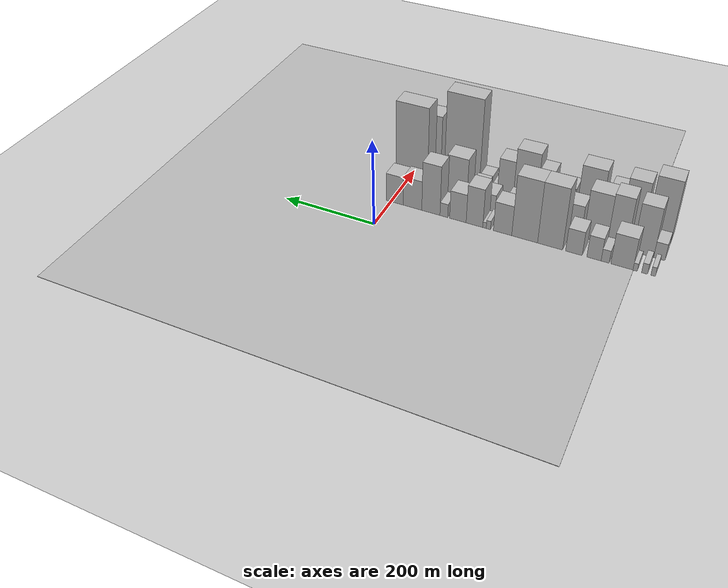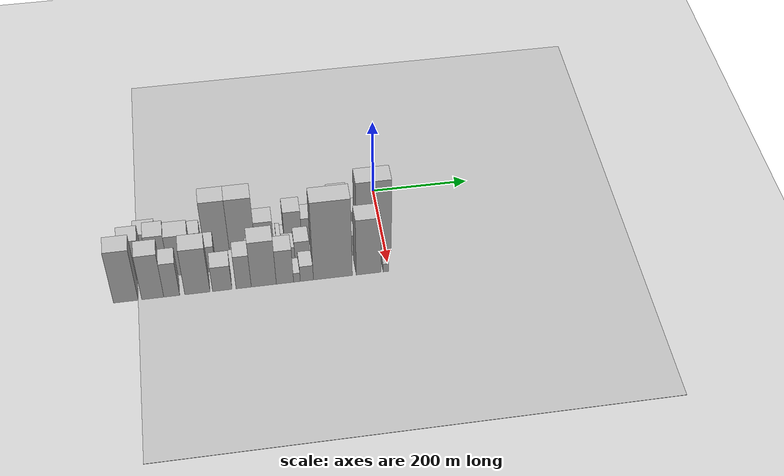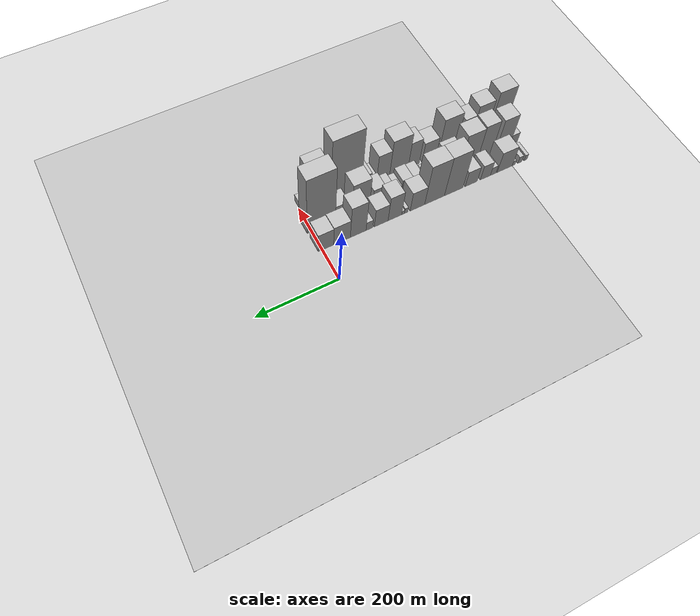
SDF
<sdf version="1.6">
 <world name="default">
  <include><name>ground_plane_1</name><uri>model://HANNAS_ground_plane</uri></include>
  <include>
   <name>ground_plane_2</name>
   <uri>model://HANNAS_ground_plane</uri>
   <pose>100 0 0  0 0 0</pose>
  </include>
  <model name="building_1">
   <static>1</static>
   <pose>100.0000 -536.7540 0 0.000000 0.000000 0.000000</pose>
   <link name="link">
    <pose>0 0 10.50 0 0 0</pose>
    <collision name="collision"><geometry><box><size>40.0000 8.4920 21.0000</size></box></geometry></collision>
    <visual name="visual">
     <cast_shadows>0</cast_shadows>
     <geometry><box><size>40.0000 8.4920 21.0000</size></box></geometry>
     <material>
      <script>
       <uri>model://HANNAS_wall/materials/scripts</uri>
       <uri>model://HANNAS_wall/materials/textures</uri>
       <name>vrc/HANNAS_wall</name>
      </script>
     </material>
    </visual>
   </link>
  </model>
  <model name="building_2">
   <static>1</static>
   <pose>100.0000 -520.8953 0 0.000000 0.000000 0.000000</pose>
   <link name="link">
    <pose>0 0 12.00 0 0 0</pose>
    <collision name="collision"><geometry><box><size>40.0000 11.2253 24.0000</size></box></geometry></collision>
    <visual name="visual">
     <cast_shadows>0</cast_shadows>
     <geometry><box><size>40.0000 11.2253 24.0000</size></box></geometry>
     <material>
      <script>
       <uri>model://HANNAS_wall/materials/scripts</uri>
       <uri>model://HANNAS_wall/materials/textures</uri>
       <name>vrc/HANNAS_wall</name>
      </script>
     </material>
    </visual>
   </link>
  </model>
  <model name="building_3">
   <static>1</static>
   <pose>100.0000 -503.1927 0 0.000000 0.000000 0.000000</pose>
   <link name="link">
    <pose>0 0 9.00 0 0 0</pose>
    <collision name="collision"><geometry><box><size>40.0000 8.1800 18.0000</size></box></geometry></collision>
    <visual name="visual">
     <cast_shadows>0</cast_shadows>
     <geometry><box><size>40.0000 8.1800 18.0000</size></box></geometry>
     <material>
      <script>
       <uri>model://HANNAS_wall/materials/scripts</uri>
       <uri>model://HANNAS_wall/materials/textures</uri>
       <name>vrc/HANNAS_wall</name>
      </script>
     </material>
    </visual>
   </link>
  </model>
  <model name="building_4">
   <static>1</static>
   <pose>100.0000 -478.0541 0 0.000000 0.000000 0.000000</pose>
   <link name="link">
    <pose>0 0 37.50 0 0 0</pose>
    <collision name="collision"><geometry><box><size>40.0000 42.0971 75.0000</size></box></geometry></collision>
    <visual name="visual">
     <cast_shadows>0</cast_shadows>
     <geometry><box><size>40.0000 42.0971 75.0000</size></box></geometry>
     <material>
      <script>
       <uri>model://HANNAS_wall/materials/scripts</uri>
       <uri>model://HANNAS_wall/materials/textures</uri>
       <name>vrc/HANNAS_wall</name>
      </script>
     </material>
    </visual>
   </link>
  </model>
  <model name="building_5">
   <static>1</static>
   <pose>100.0000 -446.2082 0 0.000000 0.000000 0.000000</pose>
   <link name="link">
    <pose>0 0 15.00 0 0 0</pose>
    <collision name="collision"><geometry><box><size>40.0000 15.5946 30.0000</size></box></geometry></collision>
    <visual name="visual">
     <cast_shadows>0</cast_shadows>
     <geometry><box><size>40.0000 15.5946 30.0000</size></box></geometry>
     <material>
      <script>
       <uri>model://HANNAS_wall/materials/scripts</uri>
       <uri>model://HANNAS_wall/materials/textures</uri>
       <name>vrc/HANNAS_wall</name>
      </script>
     </material>
    </visual>
   </link>
  </model>
  <model name="building_6">
   <static>1</static>
   <pose>100.0000 -424.6408 0 0.000000 0.000000 0.000000</pose>
   <link name="link">
    <pose>0 0 27.00 0 0 0</pose>
    <collision name="collision"><geometry><box><size>40.0000 27.5401 54.0000</size></box></geometry></collision>
    <visual name="visual">
     <cast_shadows>0</cast_shadows>
     <geometry><box><size>40.0000 27.5401 54.0000</size></box></geometry>
     <material>
      <script>
       <uri>model://HANNAS_wall/materials/scripts</uri>
       <uri>model://HANNAS_wall/materials/textures</uri>
       <name>vrc/HANNAS_wall</name>
      </script>
     </material>
    </visual>
   </link>
  </model>
  <model name="building_7">
   <static>1</static>
   <pose>100.0000 -385.5654 0 0.000000 0.000000 0.000000</pose>
   <link name="link">
    <pose>0 0 28.50 0 0 0</pose>
    <collision name="collision"><geometry><box><size>40.0000 32.6109 57.0000</size></box></geometry></collision>
    <visual name="visual">
     <cast_shadows>0</cast_shadows>
     <geometry><box><size>40.0000 32.6109 57.0000</size></box></geometry>
     <material>
      <script>
       <uri>model://HANNAS_wall/materials/scripts</uri>
       <uri>model://HANNAS_wall/materials/textures</uri>
       <name>vrc/HANNAS_wall</name>
      </script>
     </material>
    </visual>
   </link>
  </model>
  <model name="building_8">
   <static>1</static>
   <pose>100.0000 -338.2267 0 0.000000 0.000000 0.000000</pose>
   <link name="link">
    <pose>0 0 73.50 0 0 0</pose>
    <collision name="collision"><geometry><box><size>40.0000 50.0665 147.0000</size></box></geometry></collision>
    <visual name="visual">
     <cast_shadows>0</cast_shadows>
     <geometry><box><size>40.0000 50.0665 147.0000</size></box></geometry>
     <material>
      <script>
       <uri>model://HANNAS_wall/materials/scripts</uri>
       <uri>model://HANNAS_wall/materials/textures</uri>
       <name>vrc/HANNAS_wall</name>
      </script>
     </material>
    </visual>
   </link>
  </model>
  <model name="building_9">
   <static>1</static>
   <pose>100.0000 -286.8688 0 0.000000 0.000000 0.000000</pose>
   <link name="link">
    <pose>0 0 73.50 0 0 0</pose>
    <collision name="collision"><geometry><box><size>40.0000 52.6494 147.0000</size></box></geometry></collision>
    <visual name="visual">
     <cast_shadows>0</cast_shadows>
     <geometry><box><size>40.0000 52.6494 147.0000</size></box></geometry>
     <material>
      <script>
       <uri>model://HANNAS_wall/materials/scripts</uri>
       <uri>model://HANNAS_wall/materials/textures</uri>
       <name>vrc/HANNAS_wall</name>
      </script>
     </material>
    </visual>
   </link>
  </model>
  <model name="building_10">
   <static>1</static>
   <pose>100.0000 -241.4833 0 0.000000 0.000000 0.000000</pose>
   <link name="link">
    <pose>0 0 36.00 0 0 0</pose>
    <collision name="collision"><geometry><box><size>40.0000 38.1215 72.0000</size></box></geometry></collision>
    <visual name="visual">
     <cast_shadows>0</cast_shadows>
     <geometry><box><size>40.0000 38.1215 72.0000</size></box></geometry>
     <material>
      <script>
       <uri>model://HANNAS_wall/materials/scripts</uri>
       <uri>model://HANNAS_wall/materials/textures</uri>
       <name>vrc/HANNAS_wall</name>
      </script>
     </material>
    </visual>
   </link>
  </model>
  <model name="building_11">
   <static>1</static>
   <pose>100.0000 -211.9873 0 0.000000 0.000000 0.000000</pose>
   <link name="link">
    <pose>0 0 10.50 0 0 0</pose>
    <collision name="collision"><geometry><box><size>40.0000 8.8707 21.0000</size></box></geometry></collision>
    <visual name="visual">
     <cast_shadows>0</cast_shadows>
     <geometry><box><size>40.0000 8.8707 21.0000</size></box></geometry>
     <material>
      <script>
       <uri>model://HANNAS_wall/materials/scripts</uri>
       <uri>model://HANNAS_wall/materials/textures</uri>
       <name>vrc/HANNAS_wall</name>
      </script>
     </material>
    </visual>
   </link>
  </model>
  <model name="building_12">
   <static>1</static>
   <pose>100.0000 -203.8857 0 0.000000 0.000000 0.000000</pose>
   <link name="link">
    <pose>0 0 7.50 0 0 0</pose>
    <collision name="collision"><geometry><box><size>40.0000 7.3324 15.0000</size></box></geometry></collision>
    <visual name="visual">
     <cast_shadows>0</cast_shadows>
     <geometry><box><size>40.0000 7.3324 15.0000</size></box></geometry>
     <material>
      <script>
       <uri>model://HANNAS_wall/materials/scripts</uri>
       <uri>model://HANNAS_wall/materials/textures</uri>
       <name>vrc/HANNAS_wall</name>
      </script>
     </material>
    </visual>
   </link>
  </model>
  <model name="building_13">
   <static>1</static>
   <pose>100.0000 -182.5915 0 0.000000 0.000000 0.000000</pose>
   <link name="link">
    <pose>0 0 46.50 0 0 0</pose>
    <collision name="collision"><geometry><box><size>40.0000 35.2561 93.0000</size></box></geometry></collision>
    <visual name="visual">
     <cast_shadows>0</cast_shadows>
     <geometry><box><size>40.0000 35.2561 93.0000</size></box></geometry>
     <material>
      <script>
       <uri>model://HANNAS_wall/materials/scripts</uri>
       <uri>model://HANNAS_wall/materials/textures</uri>
       <name>vrc/HANNAS_wall</name>
      </script>
     </material>
    </visual>
   </link>
  </model>
  <model name="building_14">
   <static>1</static>
   <pose>100.0000 -147.2904 0 0.000000 0.000000 0.000000</pose>
   <link name="link">
    <pose>0 0 34.50 0 0 0</pose>
    <collision name="collision"><geometry><box><size>40.0000 35.3460 69.0000</size></box></geometry></collision>
    <visual name="visual">
     <cast_shadows>0</cast_shadows>
     <geometry><box><size>40.0000 35.3460 69.0000</size></box></geometry>
     <material>
      <script>
       <uri>model://HANNAS_wall/materials/scripts</uri>
       <uri>model://HANNAS_wall/materials/textures</uri>
       <name>vrc/HANNAS_wall</name>
      </script>
     </material>
    </visual>
   </link>
  </model>
  <model name="building_15">
   <static>1</static>
   <pose>100.0000 -117.1460 0 0.000000 0.000000 0.000000</pose>
   <link name="link">
    <pose>0 0 16.50 0 0 0</pose>
    <collision name="collision"><geometry><box><size>40.0000 16.9429 33.0000</size></box></geometry></collision>
    <visual name="visual">
     <cast_shadows>0</cast_shadows>
     <geometry><box><size>40.0000 16.9429 33.0000</size></box></geometry>
     <material>
      <script>
       <uri>model://HANNAS_wall/materials/scripts</uri>
       <uri>model://HANNAS_wall/materials/textures</uri>
       <name>vrc/HANNAS_wall</name>
      </script>
     </material>
    </visual>
   </link>
  </model>
  <model name="building_16">
   <static>1</static>
   <pose>100.0000 -88.7825 0 0.000000 0.000000 0.000000</pose>
   <link name="link">
    <pose>0 0 60.00 0 0 0</pose>
    <collision name="collision"><geometry><box><size>40.0000 39.7841 120.0000</size></box></geometry></collision>
    <visual name="visual">
     <cast_shadows>0</cast_shadows>
     <geometry><box><size>40.0000 39.7841 120.0000</size></box></geometry>
     <material>
      <script>
       <uri>model://HANNAS_wall/materials/scripts</uri>
       <uri>model://HANNAS_wall/materials/textures</uri>
       <name>vrc/HANNAS_wall</name>
      </script>
     </material>
    </visual>
   </link>
  </model>
  <model name="building_17">
   <static>1</static>
   <pose>100.0000 -48.1109 0 0.000000 0.000000 0.000000</pose>
   <link name="link">
    <pose>0 0 36.00 0 0 0</pose>
    <collision name="collision"><geometry><box><size>40.0000 41.5592 72.0000</size></box></geometry></collision>
    <visual name="visual">
     <cast_shadows>0</cast_shadows>
     <geometry><box><size>40.0000 41.5592 72.0000</size></box></geometry>
     <material>
      <script>
       <uri>model://HANNAS_wall/materials/scripts</uri>
       <uri>model://HANNAS_wall/materials/textures</uri>
       <name>vrc/HANNAS_wall</name>
      </script>
     </material>
    </visual>
   </link>
  </model>
  <model name="building_18">
   <static>1</static>
   <pose>100.0000 -8.3283 0 0.000000 0.000000 0.000000</pose>
   <link name="link">
    <pose>0 0 34.50 0 0 0</pose>
    <collision name="collision"><geometry><box><size>40.0000 38.0060 69.0000</size></box></geometry></collision>
    <visual name="visual">
     <cast_shadows>0</cast_shadows>
     <geometry><box><size>40.0000 38.0060 69.0000</size></box></geometry>
     <material>
      <script>
       <uri>model://HANNAS_wall/materials/scripts</uri>
       <uri>model://HANNAS_wall/materials/textures</uri>
       <name>vrc/HANNAS_wall</name>
      </script>
     </material>
    </visual>
   </link>
  </model>
  <model name="building_36">
   <static>1</static>
   <pose>152.0000 -537.2542 0 0.000000 0.000000 0.000000</pose>
   <link name="link">
    <pose>0 0 19.50 0 0 0</pose>
    <collision name="collision"><geometry><box><size>40.0000 21.4917 39.0000</size></box></geometry></collision>
    <visual name="visual">
     <cast_shadows>0</cast_shadows>
     <geometry><box><size>40.0000 21.4917 39.0000</size></box></geometry>
     <material>
      <script>
       <uri>model://HANNAS_wall/materials/scripts</uri>
       <uri>model://HANNAS_wall/materials/textures</uri>
       <name>vrc/HANNAS_wall</name>
      </script>
     </material>
    </visual>
   </link>
  </model>
  <model name="building_37">
   <static>1</static>
   <pose>152.0000 -506.4666 0 0.000000 0.000000 0.000000</pose>
   <link name="link">
    <pose>0 0 58.50 0 0 0</pose>
    <collision name="collision"><geometry><box><size>40.0000 40.0835 117.0000</size></box></geometry></collision>
    <visual name="visual">
     <cast_shadows>0</cast_shadows>
     <geometry><box><size>40.0000 40.0835 117.0000</size></box></geometry>
     <material>
      <script>
       <uri>model://HANNAS_wall/materials/scripts</uri>
       <uri>model://HANNAS_wall/materials/textures</uri>
       <name>vrc/HANNAS_wall</name>
      </script>
     </material>
    </visual>
   </link>
  </model>
  <model name="building_38">
   <static>1</static>
   <pose>152.0000 -482.7148 0 0.000000 0.000000 0.000000</pose>
   <link name="link">
    <pose>0 0 7.50 0 0 0</pose>
    <collision name="collision"><geometry><box><size>40.0000 7.4202 15.0000</size></box></geometry></collision>
    <visual name="visual">
     <cast_shadows>0</cast_shadows>
     <geometry><box><size>40.0000 7.4202 15.0000</size></box></geometry>
     <material>
      <script>
       <uri>model://HANNAS_wall/materials/scripts</uri>
       <uri>model://HANNAS_wall/materials/textures</uri>
       <name>vrc/HANNAS_wall</name>
      </script>
     </material>
    </visual>
   </link>
  </model>
  <model name="building_39">
   <static>1</static>
   <pose>152.0000 -455.6832 0 0.000000 0.000000 0.000000</pose>
   <link name="link">
    <pose>0 0 61.50 0 0 0</pose>
    <collision name="collision"><geometry><box><size>40.0000 38.6430 123.0000</size></box></geometry></collision>
    <visual name="visual">
     <cast_shadows>0</cast_shadows>
     <geometry><box><size>40.0000 38.6430 123.0000</size></box></geometry>
     <material>
      <script>
       <uri>model://HANNAS_wall/materials/scripts</uri>
       <uri>model://HANNAS_wall/materials/textures</uri>
       <name>vrc/HANNAS_wall</name>
      </script>
     </material>
    </visual>
   </link>
  </model>
  <model name="building_40">
   <static>1</static>
   <pose>152.0000 -413.0229 0 0.000000 0.000000 0.000000</pose>
   <link name="link">
    <pose>0 0 58.50 0 0 0</pose>
    <collision name="collision"><geometry><box><size>40.0000 46.6776 117.0000</size></box></geometry></collision>
    <visual name="visual">
     <cast_shadows>0</cast_shadows>
     <geometry><box><size>40.0000 46.6776 117.0000</size></box></geometry>
     <material>
      <script>
       <uri>model://HANNAS_wall/materials/scripts</uri>
       <uri>model://HANNAS_wall/materials/textures</uri>
       <name>vrc/HANNAS_wall</name>
      </script>
     </material>
    </visual>
   </link>
  </model>
  <model name="building_41">
   <static>1</static>
   <pose>152.0000 -363.9254 0 0.000000 0.000000 0.000000</pose>
   <link name="link">
    <pose>0 0 37.50 0 0 0</pose>
    <collision name="collision"><geometry><box><size>40.0000 41.5174 75.0000</size></box></geometry></collision>
    <visual name="visual">
     <cast_shadows>0</cast_shadows>
     <geometry><box><size>40.0000 41.5174 75.0000</size></box></geometry>
     <material>
      <script>
       <uri>model://HANNAS_wall/materials/scripts</uri>
       <uri>model://HANNAS_wall/materials/textures</uri>
       <name>vrc/HANNAS_wall</name>
      </script>
     </material>
    </visual>
   </link>
  </model>
  <model name="building_42">
   <static>1</static>
   <pose>152.0000 -299.8466 0 0.000000 0.000000 0.000000</pose>
   <link name="link">
    <pose>0 0 9.00 0 0 0</pose>
    <collision name="collision"><geometry><box><size>40.0000 8.8800 18.0000</size></box></geometry></collision>
    <visual name="visual">
     <cast_shadows>0</cast_shadows>
     <geometry><box><size>40.0000 8.8800 18.0000</size></box></geometry>
     <material>
      <script>
       <uri>model://HANNAS_wall/materials/scripts</uri>
       <uri>model://HANNAS_wall/materials/textures</uri>
       <name>vrc/HANNAS_wall</name>
      </script>
     </material>
    </visual>
   </link>
  </model>
  <model name="building_43">
   <static>1</static>
   <pose>152.0000 -291.3068 0 0.000000 0.000000 0.000000</pose>
   <link name="link">
    <pose>0 0 9.00 0 0 0</pose>
    <collision name="collision"><geometry><box><size>40.0000 8.1996 18.0000</size></box></geometry></collision>
    <visual name="visual">
     <cast_shadows>0</cast_shadows>
     <geometry><box><size>40.0000 8.1996 18.0000</size></box></geometry>
     <material>
      <script>
       <uri>model://HANNAS_wall/materials/scripts</uri>
       <uri>model://HANNAS_wall/materials/textures</uri>
       <name>vrc/HANNAS_wall</name>
      </script>
     </material>
    </visual>
   </link>
  </model>
  <model name="building_44">
   <static>1</static>
   <pose>152.0000 -268.6145 0 0.000000 0.000000 0.000000</pose>
   <link name="link">
    <pose>0 0 22.50 0 0 0</pose>
    <collision name="collision"><geometry><box><size>40.0000 25.1849 45.0000</size></box></geometry></collision>
    <visual name="visual">
     <cast_shadows>0</cast_shadows>
     <geometry><box><size>40.0000 25.1849 45.0000</size></box></geometry>
     <material>
      <script>
       <uri>model://HANNAS_wall/materials/scripts</uri>
       <uri>model://HANNAS_wall/materials/textures</uri>
       <name>vrc/HANNAS_wall</name>
      </script>
     </material>
    </visual>
   </link>
  </model>
  <model name="building_45">
   <static>1</static>
   <pose>152.0000 -242.4878 0 0.000000 0.000000 0.000000</pose>
   <link name="link">
    <pose>0 0 24.00 0 0 0</pose>
    <collision name="collision"><geometry><box><size>40.0000 27.0686 48.0000</size></box></geometry></collision>
    <visual name="visual">
     <cast_shadows>0</cast_shadows>
     <geometry><box><size>40.0000 27.0686 48.0000</size></box></geometry>
     <material>
      <script>
       <uri>model://HANNAS_wall/materials/scripts</uri>
       <uri>model://HANNAS_wall/materials/textures</uri>
       <name>vrc/HANNAS_wall</name>
      </script>
     </material>
    </visual>
   </link>
  </model>
  <model name="building_46">
   <static>1</static>
   <pose>152.0000 -221.1793 0 0.000000 0.000000 0.000000</pose>
   <link name="link">
    <pose>0 0 15.00 0 0 0</pose>
    <collision name="collision"><geometry><box><size>40.0000 15.5484 30.0000</size></box></geometry></collision>
    <visual name="visual">
     <cast_shadows>0</cast_shadows>
     <geometry><box><size>40.0000 15.5484 30.0000</size></box></geometry>
     <material>
      <script>
       <uri>model://HANNAS_wall/materials/scripts</uri>
       <uri>model://HANNAS_wall/materials/textures</uri>
       <name>vrc/HANNAS_wall</name>
      </script>
     </material>
    </visual>
   </link>
  </model>
  <model name="building_47">
   <static>1</static>
   <pose>152.0000 -195.7376 0 0.000000 0.000000 0.000000</pose>
   <link name="link">
    <pose>0 0 22.50 0 0 0</pose>
    <collision name="collision"><geometry><box><size>40.0000 23.3349 45.0000</size></box></geometry></collision>
    <visual name="visual">
     <cast_shadows>0</cast_shadows>
     <geometry><box><size>40.0000 23.3349 45.0000</size></box></geometry>
     <material>
      <script>
       <uri>model://HANNAS_wall/materials/scripts</uri>
       <uri>model://HANNAS_wall/materials/textures</uri>
       <name>vrc/HANNAS_wall</name>
      </script>
     </material>
    </visual>
   </link>
  </model>
  <model name="building_48">
   <static>1</static>
   <pose>152.0000 -168.9186 0 0.000000 0.000000 0.000000</pose>
   <link name="link">
    <pose>0 0 30.00 0 0 0</pose>
    <collision name="collision"><geometry><box><size>40.0000 30.3031 60.0000</size></box></geometry></collision>
    <visual name="visual">
     <cast_shadows>0</cast_shadows>
     <geometry><box><size>40.0000 30.3031 60.0000</size></box></geometry>
     <material>
      <script>
       <uri>model://HANNAS_wall/materials/scripts</uri>
       <uri>model://HANNAS_wall/materials/textures</uri>
       <name>vrc/HANNAS_wall</name>
      </script>
     </material>
    </visual>
   </link>
  </model>
  <model name="building_49">
   <static>1</static>
   <pose>152.0000 -123.2885 0 0.000000 0.000000 0.000000</pose>
   <link name="link">
    <pose>0 0 57.00 0 0 0</pose>
    <collision name="collision"><geometry><box><size>40.0000 44.9571 114.0000</size></box></geometry></collision>
    <visual name="visual">
     <cast_shadows>0</cast_shadows>
     <geometry><box><size>40.0000 44.9571 114.0000</size></box></geometry>
     <material>
      <script>
       <uri>model://HANNAS_wall/materials/scripts</uri>
       <uri>model://HANNAS_wall/materials/textures</uri>
       <name>vrc/HANNAS_wall</name>
      </script>
     </material>
    </visual>
   </link>
  </model>
  <model name="building_50">
   <static>1</static>
   <pose>152.0000 -75.2636 0 0.000000 0.000000 0.000000</pose>
   <link name="link">
    <pose>0 0 30.00 0 0 0</pose>
    <collision name="collision"><geometry><box><size>40.0000 33.0927 60.0000</size></box></geometry></collision>
    <visual name="visual">
     <cast_shadows>0</cast_shadows>
     <geometry><box><size>40.0000 33.0927 60.0000</size></box></geometry>
     <material>
      <script>
       <uri>model://HANNAS_wall/materials/scripts</uri>
       <uri>model://HANNAS_wall/materials/textures</uri>
       <name>vrc/HANNAS_wall</name>
      </script>
     </material>
    </visual>
   </link>
  </model>
  <model name="building_51">
   <static>1</static>
   <pose>152.0000 -23.3655 0 0.000000 0.000000 0.000000</pose>
   <link name="link">
    <pose>0 0 105.00 0 0 0</pose>
    <collision name="collision"><geometry><box><size>40.0000 70.7035 210.0000</size></box></geometry></collision>
    <visual name="visual">
     <cast_shadows>0</cast_shadows>
     <geometry><box><size>40.0000 70.7035 210.0000</size></box></geometry>
     <material>
      <script>
       <uri>model://HANNAS_wall/materials/scripts</uri>
       <uri>model://HANNAS_wall/materials/textures</uri>
       <name>vrc/HANNAS_wall</name>
      </script>
     </material>
    </visual>
   </link>
  </model>
  <model name="building_70">
   <static>1</static>
   <pose>204.0000 -523.8769 0 0.000000 0.000000 0.000000</pose>
   <link name="link">
    <pose>0 0 75.00 0 0 0</pose>
    <collision name="collision"><geometry><box><size>40.0000 48.2462 150.0000</size></box></geometry></collision>
    <visual name="visual">
     <cast_shadows>0</cast_shadows>
     <geometry><box><size>40.0000 48.2462 150.0000</size></box></geometry>
     <material>
      <script>
       <uri>model://HANNAS_wall/materials/scripts</uri>
       <uri>model://HANNAS_wall/materials/textures</uri>
       <name>vrc/HANNAS_wall</name>
      </script>
     </material>
    </visual>
   </link>
  </model>
  <model name="building_71">
   <static>1</static>
   <pose>204.0000 -471.2453 0 0.000000 0.000000 0.000000</pose>
   <link name="link">
    <pose>0 0 64.50 0 0 0</pose>
    <collision name="collision"><geometry><box><size>40.0000 43.0169 129.0000</size></box></geometry></collision>
    <visual name="visual">
     <cast_shadows>0</cast_shadows>
     <geometry><box><size>40.0000 43.0169 129.0000</size></box></geometry>
     <material>
      <script>
       <uri>model://HANNAS_wall/materials/scripts</uri>
       <uri>model://HANNAS_wall/materials/textures</uri>
       <name>vrc/HANNAS_wall</name>
      </script>
     </material>
    </visual>
   </link>
  </model>
  <model name="building_72">
   <static>1</static>
   <pose>204.0000 -434.1034 0 0.000000 0.000000 0.000000</pose>
   <link name="link">
    <pose>0 0 49.50 0 0 0</pose>
    <collision name="collision"><geometry><box><size>40.0000 31.2668 99.0000</size></box></geometry></collision>
    <visual name="visual">
     <cast_shadows>0</cast_shadows>
     <geometry><box><size>40.0000 31.2668 99.0000</size></box></geometry>
     <material>
      <script>
       <uri>model://HANNAS_wall/materials/scripts</uri>
       <uri>model://HANNAS_wall/materials/textures</uri>
       <name>vrc/HANNAS_wall</name>
      </script>
     </material>
    </visual>
   </link>
  </model>
  <model name="building_73">
   <static>1</static>
   <pose>204.0000 -383.5374 0 0.000000 0.000000 0.000000</pose>
   <link name="link">
    <pose>0 0 66.00 0 0 0</pose>
    <collision name="collision"><geometry><box><size>40.0000 49.8651 132.0000</size></box></geometry></collision>
    <visual name="visual">
     <cast_shadows>0</cast_shadows>
     <geometry><box><size>40.0000 49.8651 132.0000</size></box></geometry>
     <material>
      <script>
       <uri>model://HANNAS_wall/materials/scripts</uri>
       <uri>model://HANNAS_wall/materials/textures</uri>
       <name>vrc/HANNAS_wall</name>
      </script>
     </material>
    </visual>
   </link>
  </model>
  <model name="building_74">
   <static>1</static>
   <pose>204.0000 -334.3912 0 0.000000 0.000000 0.000000</pose>
   <link name="link">
    <pose>0 0 36.00 0 0 0</pose>
    <collision name="collision"><geometry><box><size>40.0000 38.4274 72.0000</size></box></geometry></collision>
    <visual name="visual">
     <cast_shadows>0</cast_shadows>
     <geometry><box><size>40.0000 38.4274 72.0000</size></box></geometry>
     <material>
      <script>
       <uri>model://HANNAS_wall/materials/scripts</uri>
       <uri>model://HANNAS_wall/materials/textures</uri>
       <name>vrc/HANNAS_wall</name>
      </script>
     </material>
    </visual>
   </link>
  </model>
  <model name="building_75">
   <static>1</static>
   <pose>204.0000 -292.0791 0 0.000000 0.000000 0.000000</pose>
   <link name="link">
    <pose>0 0 48.00 0 0 0</pose>
    <collision name="collision"><geometry><box><size>40.0000 30.1969 96.0000</size></box></geometry></collision>
    <visual name="visual">
     <cast_shadows>0</cast_shadows>
     <geometry><box><size>40.0000 30.1969 96.0000</size></box></geometry>
     <material>
      <script>
       <uri>model://HANNAS_wall/materials/scripts</uri>
       <uri>model://HANNAS_wall/materials/textures</uri>
       <name>vrc/HANNAS_wall</name>
      </script>
     </material>
    </visual>
   </link>
  </model>
  <model name="building_76">
   <static>1</static>
   <pose>204.0000 -252.0511 0 0.000000 0.000000 0.000000</pose>
   <link name="link">
    <pose>0 0 66.00 0 0 0</pose>
    <collision name="collision"><geometry><box><size>40.0000 49.8590 132.0000</size></box></geometry></collision>
    <visual name="visual">
     <cast_shadows>0</cast_shadows>
     <geometry><box><size>40.0000 49.8590 132.0000</size></box></geometry>
     <material>
      <script>
       <uri>model://HANNAS_wall/materials/scripts</uri>
       <uri>model://HANNAS_wall/materials/textures</uri>
       <name>vrc/HANNAS_wall</name>
      </script>
     </material>
    </visual>
   </link>
  </model>
  <model name="building_77">
   <static>1</static>
   <pose>204.0000 -209.9201 0 0.000000 0.000000 0.000000</pose>
   <link name="link">
    <pose>0 0 49.50 0 0 0</pose>
    <collision name="collision"><geometry><box><size>40.0000 34.4031 99.0000</size></box></geometry></collision>
    <visual name="visual">
     <cast_shadows>0</cast_shadows>
     <geometry><box><size>40.0000 34.4031 99.0000</size></box></geometry>
     <material>
      <script>
       <uri>model://HANNAS_wall/materials/scripts</uri>
       <uri>model://HANNAS_wall/materials/textures</uri>
       <name>vrc/HANNAS_wall</name>
      </script>
     </material>
    </visual>
   </link>
  </model>
  <model name="building_78">
   <static>1</static>
   <pose>204.0000 -186.0208 0 0.000000 0.000000 0.000000</pose>
   <link name="link">
    <pose>0 0 13.50 0 0 0</pose>
    <collision name="collision"><geometry><box><size>40.0000 13.3955 27.0000</size></box></geometry></collision>
    <visual name="visual">
     <cast_shadows>0</cast_shadows>
     <geometry><box><size>40.0000 13.3955 27.0000</size></box></geometry>
     <material>
      <script>
       <uri>model://HANNAS_wall/materials/scripts</uri>
       <uri>model://HANNAS_wall/materials/textures</uri>
       <name>vrc/HANNAS_wall</name>
      </script>
     </material>
    </visual>
   </link>
  </model>
  <model name="building_79">
   <static>1</static>
   <pose>204.0000 -166.1193 0 0.000000 0.000000 0.000000</pose>
   <link name="link">
    <pose>0 0 22.50 0 0 0</pose>
    <collision name="collision"><geometry><box><size>40.0000 26.4075 45.0000</size></box></geometry></collision>
    <visual name="visual">
     <cast_shadows>0</cast_shadows>
     <geometry><box><size>40.0000 26.4075 45.0000</size></box></geometry>
     <material>
      <script>
       <uri>model://HANNAS_wall/materials/scripts</uri>
       <uri>model://HANNAS_wall/materials/textures</uri>
       <name>vrc/HANNAS_wall</name>
      </script>
     </material>
    </visual>
   </link>
  </model>
  <model name="building_80">
   <static>1</static>
   <pose>204.0000 -113.8180 0 0.000000 0.000000 0.000000</pose>
   <link name="link">
    <pose>0 0 112.50 0 0 0</pose>
    <collision name="collision"><geometry><box><size>40.0000 78.1950 225.0000</size></box></geometry></collision>
    <visual name="visual">
     <cast_shadows>0</cast_shadows>
     <geometry><box><size>40.0000 78.1950 225.0000</size></box></geometry>
     <material>
      <script>
       <uri>model://HANNAS_wall/materials/scripts</uri>
       <uri>model://HANNAS_wall/materials/textures</uri>
       <name>vrc/HANNAS_wall</name>
      </script>
     </material>
    </visual>
   </link>
  </model>
  <model name="building_81">
   <static>1</static>
   <pose>204.0000 -41.9388 0 0.000000 0.000000 0.000000</pose>
   <link name="link">
    <pose>0 0 81.00 0 0 0</pose>
    <collision name="collision"><geometry><box><size>40.0000 49.5634 162.0000</size></box></geometry></collision>
    <visual name="visual">
     <cast_shadows>0</cast_shadows>
     <geometry><box><size>40.0000 49.5634 162.0000</size></box></geometry>
     <material>
      <script>
       <uri>model://HANNAS_wall/materials/scripts</uri>
       <uri>model://HANNAS_wall/materials/textures</uri>
       <name>vrc/HANNAS_wall</name>
      </script>
     </material>
    </visual>
   </link>
  </model>
  <model name="building_82">
   <static>1</static>
   <pose>204.0000 -6.6366 0 0.000000 0.000000 0.000000</pose>
   <link name="link">
    <pose>0 0 12.00 0 0 0</pose>
    <collision name="collision"><geometry><box><size>40.0000 11.0409 24.0000</size></box></geometry></collision>
    <visual name="visual">
     <cast_shadows>0</cast_shadows>
     <geometry><box><size>40.0000 11.0409 24.0000</size></box></geometry>
     <material>
      <script>
       <uri>model://HANNAS_wall/materials/scripts</uri>
       <uri>model://HANNAS_wall/materials/textures</uri>
       <name>vrc/HANNAS_wall</name>
      </script>
     </material>
    </visual>
   </link>
  </model>
 </world>
</sdf>
